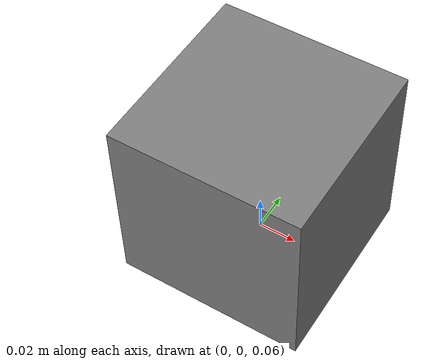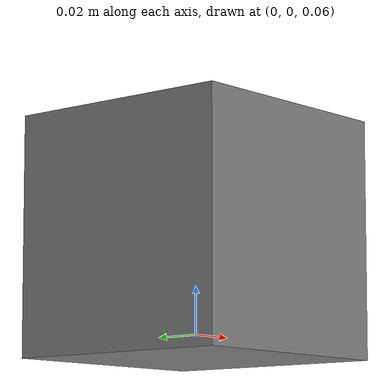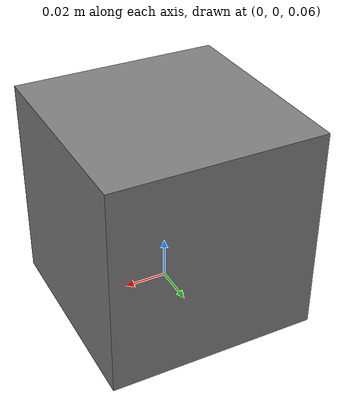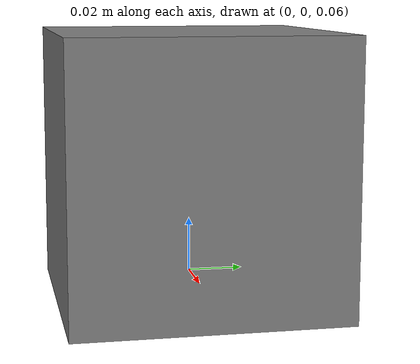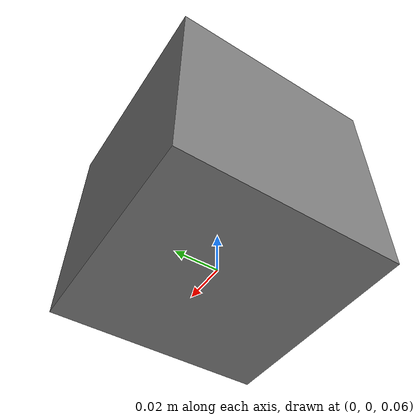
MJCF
<mujoco model="dm-mc02-smoke">
  <option timestep="0.001" gravity="0 0 -9.80665"/>
  <worldbody>
    <body name="test_body" pos="0 0 0.1">
      <joint name="test_joint" type="hinge" axis="0 0 1"/>
      <geom type="box" size="0.05 0.05 0.05" mass="0.1"/>
      <site name="imu_site" pos="0 0 0"/>
    </body>
  </worldbody>
  <actuator>
    <motor name="motor0" joint="test_joint" gear="1"/>
  </actuator>
  <sensor>
    <gyro name="imu_gyro" site="imu_site"/>
    <accelerometer name="imu_accel" site="imu_site"/>
  </sensor>
</mujoco>
